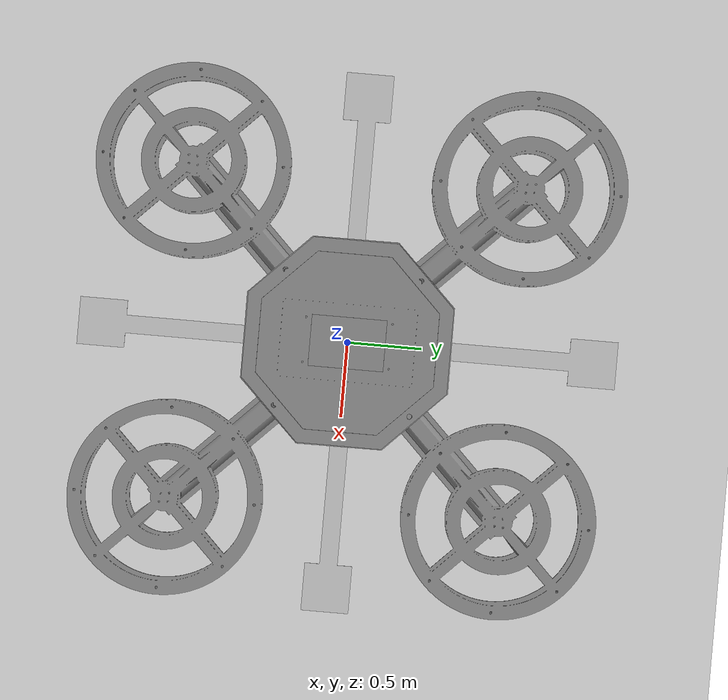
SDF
<?xml version="1.0" ?>
<sdf version="1.8">
    <world name="sensor_world">
        <physics name="1ms" type="ode">
            <max_step_size>0.001</max_step_size>
            <real_time_factor>1.0</real_time_factor>
        </physics>

        <!-- ✅ 기본 Gazebo 시스템 플러그인 -->
        <plugin filename="gz-sim-physics-system" name="gz::sim::systems::Physics"/>
        <plugin filename="gz-sim-user-commands-system" name="gz::sim::systems::UserCommands"/>
        <plugin filename="gz-sim-scene-broadcaster-system" name="gz::sim::systems::SceneBroadcaster"/>
        <plugin filename="gz-sim-imu-system" name="gz::sim::systems::Imu"/>
        <plugin filename="gz-sim-sensors-system" name="gz::sim::systems::Sensors">
            <render_engine>ogre2</render_engine>
        </plugin>
        <plugin filename="gz-sim-contact-system" name="gz::sim::systems::Contact"/>

        <!-- ✅ Ground Plane 추가 (추락 방지) -->
        <model name="ground_plane">
            <static>true</static>
            <link name="link">
                <collision name="collision">
                    <geometry>
                        <plane>
                            <normal>0 0 1</normal>
                        </plane>
                    </geometry>
                </collision>
                <visual name="visual">
                    <geometry>
                        <plane>
                            <normal>0 0 1</normal>
                            <size>1000 1000</size>
                        </plane>
                    </geometry>
                    <material>
                        <ambient>0.8 0.8 0.8 1</ambient>
                        <diffuse>0.8 0.8 0.8 1</diffuse>
                        <specular>0.8 0.8 0.8 1</specular>
                    </material>
                </visual>
            </link>
        </model>

        <!-- ✅ Sun 추가 -->
        <model name="sun">
            <static>true</static>
            <pose>0 0 10 0 0 0</pose>
            <link name="sun_link">
                <light type="directional" name="sun_light">
                    <cast_shadows>true</cast_shadows>
                    <diffuse>1.0 1.0 0.8 1</diffuse>
                    <specular>0.2 0.2 0.2 1</specular>
                    <attenuation>
                        <range>1000</range>
                        <constant>0.9</constant>
                        <linear>0.01</linear>
                        <quadratic>0.001</quadratic>
                    </attenuation>
                    <direction>-0.5 0.1 -0.9</direction>
                </light>
            </link>
        </model>

        <!-- ✅ Vehicle 모델 -->
        <model name='dof_model' canonical_link='chassis'>
            <pose relative_to='world'>0 0 1.0 0 0 0</pose>

            <!-- ✅ 차체 -->
            <link name='chassis'>
                <pose relative_to='__model__'>0 0 0 0 0 0</pose>
                <inertial>
                    <mass>50</mass>
                    <inertia>
                        <ixx>0.729165</ixx>
                        <ixy>0</ixy>
                        <ixz>0</ixz>
                        <iyy>0.729165</iyy>
                        <iyz>0</iyz>
                        <izz>0.625</izz>
                    </inertia>
                </inertial>
                <visual name='visual'>
                    <pose>0 0 -1.0 0 0 0</pose>
                    <geometry>
                        <mesh>
                            <uri>file:///home/kimsh/ros2_ws/src/dof_simulation/sdf/DOF_Model/meshes/zig_model.dae</uri>
                            <scale>0.004 0.004 0.004</scale>
                        </mesh>
                    </geometry>
                </visual>
                <collision name="collision">
                    <geometry>
                        <box>
                            <size>1.0 1.0 3.0</size>
                        </box>
                    </geometry>
                </collision>
            </link>

            <!-- ✅ yaw Wheel (수평) -->
            <link name='yaw_wheel'>
                <pose relative_to="chassis">0 0 1.6 0 0 0</pose>
                <inertial>
                    <mass>5</mass>
                    <inertia>
                        <ixx>0.145833</ixx>
                        <ixy>0</ixy>
                        <ixz>0</ixz>
                        <iyy>0.145833</iyy>
                        <iyz>0</iyz>
                        <izz>0.125</izz>
                    </inertia>
                </inertial>
                <visual name='visual'>
                    <geometry>
                        <cylinder>
                            <radius>0.05</radius>
                            <length>0.05</length>
                        </cylinder>
                    </geometry>
                    <material>
                        <ambient>0.0 1.0 0.0 1</ambient>
                        <diffuse>0.0 1.0 0.0 1</diffuse>
                        <specular>0.0 1.0 0.0 1</specular>
                    </material>
                </visual>
                <collision name='collision'>
                    <geometry>
                        <cylinder>
                            <radius>0.2</radius>
                            <length>0.1</length>
                        </cylinder>
                    </geometry>
                </collision>
            </link>

            <!-- ✅ Pitch Wheel (수직) -->
            <link name='pitch_wheel'>
                <pose relative_to="yaw_wheel">0 0 0.05 1.5707 0 0</pose>
                <inertial>
                    <mass>5</mass>
                    <inertia>
                        <ixx>0.145833</ixx>
                        <ixy>0</ixy>
                        <ixz>0</ixz>
                        <iyy>0.145833</iyy>
                        <iyz>0</iyz>
                        <izz>0.125</izz>
                    </inertia>
                </inertial>
                <visual name='visual'>
                    <geometry>
                        <cylinder>
                            <radius>0.05</radius>
                            <length>0.05</length>
                        </cylinder>
                    </geometry>
                    <material>
                        <ambient>1.0 0.0 0.0 1</ambient>
                        <diffuse>1.0 0.0 0.0 1</diffuse>
                        <specular>1.0 0.0 0.0 1</specular>
                    </material>
                </visual>
                <collision name='collision'>
                    <geometry>
                        <cylinder>
                            <radius>0.05</radius>
                            <length>0.05</length>
                        </cylinder>
                    </geometry>
                </collision>
            </link>

            <link name='gray_box'>
                <pose relative_to="pitch_wheel">0 0.05 0 0 0 0</pose>  <!-- yaw_wheel 위에 배치 -->
                <self_collide>true</self_collide>
                <inertial>
                    <mass>5</mass>
                    <inertia>
                        <ixx>0.145833</ixx>
                        <ixy>0</ixy>
                        <ixz>0</ixz>
                        <iyy>0.145833</iyy>
                        <iyz>0</iyz>
                        <izz>0.125</izz>
                    </inertia>
                </inertial>
                <gravity>1</gravity>
                <visual name='visual'>
                    <pose>0 0 0 -1.57 1.57 0</pose>
                    <geometry>
                        <mesh>
                            <uri>file:///home/kimsh/ros2_ws/src/dof_simulation/sdf/DOF_Model/meshes/basecase.dae</uri>
                            <scale>0.04 0.04 0.04</scale>
                        </mesh>
                    </geometry>
                    <material>
                        <ambient>0.5 0.5 0.5 1</ambient>  <!-- ✅ 회색 설정 -->
                        <diffuse>0.5 0.5 0.5 1</diffuse>
                        <specular>0.5 0.5 0.5 1</specular>
                    </material>
                </visual>
                <collision name='collision'>
                    <geometry>
                        <mesh>
                            <uri>file:///home/kimsh/ros2_ws/src/dof_simulation/sdf/DOF_Model/meshes/basecase.dae</uri>
                            <scale>0.04 0.04 0.04</scale>
                        </mesh>
                    </geometry>
                </collision>
                <sensor name="imu_sensor" type="imu">
                    <always_on>1</always_on>
                    <update_rate>100</update_rate>
                    <visualize>true</visualize>
                    <topic>imu</topic>
                </sensor>
            </link>

            <link name='gray_top'>
                <pose relative_to="gray_box">0 0.35 0 0 0 0</pose>  <!-- yaw_wheel 위에 배치 -->
                <self_collide>true</self_collide>
                <inertial>
                    <mass>5</mass>
                    <inertia>
                        <ixx>0.145833</ixx>
                        <ixy>0</ixy>
                        <ixz>0</ixz>
                        <iyy>0.145833</iyy>
                        <iyz>0</iyz>
                        <izz>0.125</izz>
                    </inertia>
                </inertial>
                <gravity>1</gravity>
                <visual name='visual'>
                    <pose>0 0 0 -1.57 1.57 0</pose>
                    <geometry>
                        <mesh>
                            <uri>file:///home/kimsh/ros2_ws/src/dof_simulation/sdf/DOF_Model/meshes/toplid.dae</uri>
                            <scale>0.04 0.04 0.04</scale>
                        </mesh>
                    </geometry>
                    <material>
                        <ambient>0.5 0.5 0.5 1</ambient>  <!-- ✅ 회색 설정 -->
                        <diffuse>0.5 0.5 0.5 1</diffuse>
                        <specular>0.5 0.5 0.5 1</specular>
                    </material>
                </visual>
                <collision name='collision'>
                    <geometry>
                        <mesh>
                            <uri>file:///home/kimsh/ros2_ws/src/dof_simulation/sdf/DOF_Model/meshes/toplid.dae</uri>
                            <scale>0.04 0.04 0.04</scale>
                        </mesh>
                    </geometry>
                </collision>
            </link>

            <link name='arm_1'>
                <pose relative_to="gray_box">0.3 0.08 -0.3 -1.5708 0.7854 0</pose>
                <self_collide>true</self_collide>
                <inertial>
                    <mass>5</mass>
                    <inertia>
                        <ixx>0.145833</ixx>
                        <ixy>0</ixy>
                        <ixz>0</ixz>
                        <iyy>0.145833</iyy>
                        <iyz>0</iyz>
                        <izz>0.125</izz>
                    </inertia>
                </inertial>
                <gravity>1</gravity>
                <visual name='visual'>
                    <pose>0 0 0 0 0 0</pose>
                    <geometry>
                        <mesh>
                            <uri>file:///home/kimsh/ros2_ws/src/dof_simulation/sdf/DOF_Model/meshes/arm_prop_motro.dae</uri>
                            <scale>0.004 0.004 0.004</scale>
                        </mesh>
                    </geometry>
                    <material>
                        <ambient>0.5 0.5 0.5 1</ambient>  <!-- ✅ 회색 설정 -->
                        <diffuse>0.5 0.5 0.5 1</diffuse>
                        <specular>0.5 0.5 0.5 1</specular>
                    </material>
                </visual>
                <collision name='collision'>
                    <geometry>
                        <mesh>
                            <uri>file:///home/kimsh/ros2_ws/src/dof_simulation/sdf/DOF_Model/meshes/arm_prop_motro.dae</uri>
                            <scale>0.004 0.004 0.004</scale>
                        </mesh>
                    </geometry>
                </collision>
            </link>

            <link name='blade_1'>
                <pose relative_to="arm_1">0.92 0.0 0.26 0 0 0</pose>
                <self_collide>true</self_collide>
                <inertial>
                    <mass>5</mass>
                    <inertia>
                        <ixx>0.145833</ixx>
                        <ixy>0</ixy>
                        <ixz>0</ixz>
                        <iyy>0.145833</iyy>
                        <iyz>0</iyz>
                        <izz>0.125</izz>
                    </inertia>
                </inertial>
                <gravity>1</gravity>
                <visual name='visual'>
                    <pose>0 0 0 0 0 0</pose>
                    <geometry>
                        <mesh>
                            <uri>file:///home/kimsh/ros2_ws/src/dof_simulation/sdf/DOF_Model/meshes/blade.dae</uri>
                            <scale>0.04 0.04 0.04</scale>
                        </mesh>
                    </geometry>
                    <material>
                        <ambient>0.5 0.5 0.5 1</ambient>  <!-- ✅ 회색 설정 -->
                        <diffuse>0.5 0.5 0.5 1</diffuse>
                        <specular>0.5 0.5 0.5 1</specular>
                    </material>
                </visual>
                <collision name='collision'>
                    <geometry>
                        <mesh>
                            <uri>file:///home/kimsh/ros2_ws/src/dof_simulation/sdf/DOF_Model/meshes/blade.dae</uri>
                            <scale>0.04 0.04 0.04</scale>
                        </mesh>
                    </geometry>
                </collision>
            </link>

            <link name='arm_2'>
                <pose relative_to="gray_box">-0.32 0.08 0.32 -1.5708 -2.3562 0</pose>  <!-- yaw_wheel 위에 배치 -->
                <self_collide>true</self_collide>
                <inertial>
                    <mass>5</mass>
                    <inertia>
                        <ixx>0.145833</ixx>
                        <ixy>0</ixy>
                        <ixz>0</ixz>
                        <iyy>0.145833</iyy>
                        <iyz>0</iyz>
                        <izz>0.125</izz>
                    </inertia>
                </inertial>
                <gravity>1</gravity>
                <visual name='visual'>
                    <pose>0 0 0 0 0 0</pose>
                    <geometry>
                        <mesh>
                            <uri>file:///home/kimsh/ros2_ws/src/dof_simulation/sdf/DOF_Model/meshes/arm_prop_motro.dae</uri>
                            <scale>0.004 0.004 0.004</scale>
                        </mesh>
                    </geometry>
                    <material>
                        <ambient>0.5 0.5 0.5 1</ambient>  <!-- ✅ 회색 설정 -->
                        <diffuse>0.5 0.5 0.5 1</diffuse>
                        <specular>0.5 0.5 0.5 1</specular>
                    </material>
                </visual>
                <collision name='collision'>
                    <geometry>
                        <mesh>
                            <uri>file:///home/kimsh/ros2_ws/src/dof_simulation/sdf/DOF_Model/meshes/arm_prop_motro.dae</uri>
                            <scale>0.004 0.004 0.004</scale>
                        </mesh>
                    </geometry>
                </collision>
            </link>

            <link name='blade_2'>
                <pose relative_to="arm_2">0.92 0.0 0.26 0 0 0</pose>
                <self_collide>true</self_collide>
                <inertial>
                    <mass>5</mass>
                    <inertia>
                        <ixx>0.145833</ixx>
                        <ixy>0</ixy>
                        <ixz>0</ixz>
                        <iyy>0.145833</iyy>
                        <iyz>0</iyz>
                        <izz>0.125</izz>
                    </inertia>
                </inertial>
                <gravity>1</gravity>
                <visual name='visual'>
                    <pose>0 0 0 0 0 0</pose>
                    <geometry>
                        <mesh>
                            <uri>file:///home/kimsh/ros2_ws/src/dof_simulation/sdf/DOF_Model/meshes/blade.dae</uri>
                            <scale>0.04 0.04 0.04</scale>
                        </mesh>
                    </geometry>
                    <material>
                        <ambient>0.5 0.5 0.5 1</ambient>  <!-- ✅ 회색 설정 -->
                        <diffuse>0.5 0.5 0.5 1</diffuse>
                        <specular>0.5 0.5 0.5 1</specular>
                    </material>
                </visual>
                <collision name='collision'>
                    <geometry>
                        <mesh>
                            <uri>file:///home/kimsh/ros2_ws/src/dof_simulation/sdf/DOF_Model/meshes/blade.dae</uri>
                            <scale>0.04 0.04 0.04</scale>
                        </mesh>
                    </geometry>
                </collision>
            </link>

            <link name='arm_3'>
                <pose relative_to="gray_box">-0.32 0.08 -0.32 -1.5708 2.3562 0</pose>  <!-- yaw_wheel 위에 배치 -->
                <self_collide>true</self_collide>
                <inertial>
                    <mass>5</mass>
                    <inertia>
                        <ixx>0.145833</ixx>
                        <ixy>0</ixy>
                        <ixz>0</ixz>
                        <iyy>0.145833</iyy>
                        <iyz>0</iyz>
                        <izz>0.125</izz>
                    </inertia>
                </inertial>
                <gravity>1</gravity>
                <visual name='visual'>
                    <pose>0 0 0 0 0 0</pose>
                    <geometry>
                        <mesh>
                            <uri>file:///home/kimsh/ros2_ws/src/dof_simulation/sdf/DOF_Model/meshes/arm_prop_motro.dae</uri>
                            <scale>0.004 0.004 0.004</scale>
                        </mesh>
                    </geometry>
                    <material>
                        <ambient>0.5 0.5 0.5 1</ambient>  <!-- ✅ 회색 설정 -->
                        <diffuse>0.5 0.5 0.5 1</diffuse>
                        <specular>0.5 0.5 0.5 1</specular>
                    </material>
                </visual>
                <collision name='collision'>
                    <geometry>
                        <mesh>
                            <uri>file:///home/kimsh/ros2_ws/src/dof_simulation/sdf/DOF_Model/meshes/arm_prop_motro.dae</uri>
                            <scale>0.004 0.004 0.004</scale>
                        </mesh>
                    </geometry>
                </collision>
            </link>

            <link name='blade_3'>
                <pose relative_to="arm_3">0.92 0.0 0.26 0 0 0</pose>
                <self_collide>true</self_collide>
                <inertial>
                    <mass>5</mass>
                    <inertia>
                        <ixx>0.145833</ixx>
                        <ixy>0</ixy>
                        <ixz>0</ixz>
                        <iyy>0.145833</iyy>
                        <iyz>0</iyz>
                        <izz>0.125</izz>
                    </inertia>
                </inertial>
                <gravity>1</gravity>
                <visual name='visual'>
                    <pose>0 0 0 0 0 0</pose>
                    <geometry>
                        <mesh>
                            <uri>file:///home/kimsh/ros2_ws/src/dof_simulation/sdf/DOF_Model/meshes/blade.dae</uri>
                            <scale>0.04 0.04 0.04</scale>
                        </mesh>
                    </geometry>
                    <material>
                        <ambient>0.5 0.5 0.5 1</ambient>  <!-- ✅ 회색 설정 -->
                        <diffuse>0.5 0.5 0.5 1</diffuse>
                        <specular>0.5 0.5 0.5 1</specular>
                    </material>
                </visual>
                <collision name='collision'>
                    <geometry>
                        <mesh>
                            <uri>file:///home/kimsh/ros2_ws/src/dof_simulation/sdf/DOF_Model/meshes/blade.dae</uri>
                            <scale>0.04 0.04 0.04</scale>
                        </mesh>
                    </geometry>
                </collision>
            </link>

            <link name='arm_4'>
                <pose relative_to="gray_box">0.32 0.08 0.32 -1.5708 -0.7854 0</pose>  <!-- yaw_wheel 위에 배치 -->
                <self_collide>true</self_collide>
                <inertial>
                    <mass>5</mass>
                    <inertia>
                        <ixx>0.145833</ixx>
                        <ixy>0</ixy>
                        <ixz>0</ixz>
                        <iyy>0.145833</iyy>
                        <iyz>0</iyz>
                        <izz>0.125</izz>
                    </inertia>
                </inertial>
                <gravity>1</gravity>
                <visual name='visual'>
                    <pose>0 0 0 0 0 0</pose>
                    <geometry>
                        <mesh>
                            <uri>file:///home/kimsh/ros2_ws/src/dof_simulation/sdf/DOF_Model/meshes/arm_prop_motro.dae</uri>
                            <scale>0.004 0.004 0.004</scale>
                        </mesh>
                    </geometry>
                    <material>
                        <ambient>0.5 0.5 0.5 1</ambient>  <!-- ✅ 회색 설정 -->
                        <diffuse>0.5 0.5 0.5 1</diffuse>
                        <specular>0.5 0.5 0.5 1</specular>
                    </material>
                </visual>
                <collision name='collision'>
                    <geometry>
                        <mesh>
                            <uri>file:///home/kimsh/ros2_ws/src/dof_simulation/sdf/DOF_Model/meshes/arm_prop_motro.dae</uri>
                            <scale>0.004 0.004 0.004</scale>
                        </mesh>
                    </geometry>
                </collision>
            </link>

            <link name='blade_4'>
                <pose relative_to="arm_4">0.92 0.0 0.26 0 0 0</pose>
                <self_collide>true</self_collide>
                <inertial>
                    <mass>5</mass>
                    <inertia>
                        <ixx>0.145833</ixx>
                        <ixy>0</ixy>
                        <ixz>0</ixz>
                        <iyy>0.145833</iyy>
                        <iyz>0</iyz>
                        <izz>0.125</izz>
                    </inertia>
                </inertial>
                <gravity>1</gravity>
                <visual name='visual'>
                    <pose>0 0 0 0 0 0</pose>
                    <geometry>
                        <mesh>
                            <uri>file:///home/kimsh/ros2_ws/src/dof_simulation/sdf/DOF_Model/meshes/blade.dae</uri>
                            <scale>0.04 0.04 0.04</scale>
                        </mesh>
                    </geometry>
                    <material>
                        <ambient>0.5 0.5 0.5 1</ambient>  <!-- ✅ 회색 설정 -->
                        <diffuse>0.5 0.5 0.5 1</diffuse>
                        <specular>0.5 0.5 0.5 1</specular>
                    </material>
                </visual>
                <collision name='collision'>
                    <geometry>
                        <mesh>
                            <uri>file:///home/kimsh/ros2_ws/src/dof_simulation/sdf/DOF_Model/meshes/blade.dae</uri>
                            <scale>0.04 0.04 0.04</scale>
                        </mesh>
                    </geometry>
                </collision>
            </link>

            <joint name='yaw_wheel_joint' type='revolute'>
                <parent>chassis</parent>
                <child>yaw_wheel</child>
                <axis>
                    <xyz>0 0 1</xyz>
                    <limit>
                        <lower>-1e16</lower>
                        <upper>1e16</upper>
                        <effort>5e6</effort>  <!-- ✅ Effort 설정 추가 -->
                    </limit>
                </axis>
            </joint>

            <joint name='pitch_wheel_joint' type='revolute'>
                <parent>yaw_wheel</parent>
                <child>pitch_wheel</child>
                <axis>
                    <xyz>0 0 1</xyz>
                    <limit>
                        <lower>-0.785398</lower>
                        <upper>0.785398</upper>
                        <effort>5e6</effort>  <!-- ✅ Effort 설정 추가 -->
                    </limit>
                </axis>
            </joint>

            <joint name='gray_box_joint' type='revolute'>
                <parent>pitch_wheel</parent>
                <child>gray_box</child>
                <axis>
                    <xyz>1 0 0</xyz>
                    <limit>
                        <lower>-0.785398</lower>
                        <upper>0.785398</upper>
                        <effort>5e6</effort>  <!-- ✅ Effort 설정 추가 -->
                    </limit>
                </axis>
            </joint>

            <joint name='gray_top_joint' type='fixed'>
                <parent>gray_box</parent>
                <child>gray_top</child>
            </joint>

            <joint name='arm_1_joint' type='fixed'>
                <parent>gray_box</parent>
                <child>arm_1</child>
            </joint>

            <joint name='arm_2_joint' type='fixed'>
                <parent>arm_1</parent>
                <child>arm_2</child>
            </joint>

            <joint name='arm_3_joint' type='fixed'>
                <parent>arm_2</parent>
                <child>arm_3</child>
            </joint>

            <joint name='arm_4_joint' type='fixed'>
                <parent>arm_3</parent>
                <child>arm_4</child>
            </joint>

            <joint name='blade_1_joint' type='revolute'>
                <parent>arm_1</parent>
                <child>blade_1</child>
`                <axis>
                    <xyz>0 0 1</xyz>
                    <dynamics>
                        <damping>0.1</damping> <!-- 선택 사항 -->
                    </dynamics>
                    <limit>
                        <lower>-1e16</lower>   <!-- 매우 큰 음수 -->
                        <upper>1e16</upper>    <!-- 매우 큰 양수 -->
                        <effort>5e6</effort>
                    </limit>
                </axis>
            </joint>
            <joint name='blade_2_joint' type='revolute'>
                <parent>arm_2</parent>
                <child>blade_2</child>
                <axis>
                    <xyz>0 0 1</xyz>
                    <dynamics>
                        <damping>0.1</damping> <!-- 선택 사항 -->
                    </dynamics>
                    <limit>
                        <lower>-1e16</lower>   <!-- 매우 큰 음수 -->
                        <upper>1e16</upper>    <!-- 매우 큰 양수 -->
                        <effort>5e6</effort>
                    </limit>
                </axis>
            </joint>
            <joint name='blade_3_joint' type='revolute'>
                <parent>arm_3</parent>
                <child>blade_3</child>
                <axis>
                    <xyz>0 0 1</xyz>
                    <dynamics>
                        <damping>0.1</damping> <!-- 선택 사항 -->
                    </dynamics>
                    <limit>
                        <lower>-1e16</lower>   <!-- 매우 큰 음수 -->
                        <upper>1e16</upper>    <!-- 매우 큰 양수 -->
                        <effort>5e6</effort>
                    </limit>
                </axis>
            </joint>
           <joint name='blade_4_joint' type='revolute'>
                <parent>arm_4</parent>
                <child>blade_4</child>
                <axis>
                    <xyz>0 0 1</xyz>
                    <dynamics>
                        <damping>0.1</damping> <!-- 선택 사항 -->
                    </dynamics>
                    <limit>
                        <lower>-1e16</lower>   <!-- 매우 큰 음수 -->
                        <upper>1e16</upper>    <!-- 매우 큰 양수 -->
                        <effort>5e6</effort>
                    </limit>
                </axis>
            </joint>

            <plugin filename="gz-sim-joint-controller-system" name="gz::sim::systems::JointController">
                <joint_name>pitch_wheel_joint</joint_name>
                <topic>/pitch_wheel/command</topic>
                <velocity_pid>
                    <p>1.0</p>
                    <i>0.0</i>
                    <d>0.0</d>
                    <reset_on_setpoint_change>true</reset_on_setpoint_change>
                </velocity_pid>
            </plugin>

            <plugin filename="gz-sim-joint-controller-system" name="gz::sim::systems::JointController">
                <joint_name>yaw_wheel_joint</joint_name>
                <topic>/yaw_wheel/command</topic>
                <velocity_pid>
                    <p>1.0</p>
                    <i>0.0</i>
                    <d>0.0</d>
                    <reset_on_setpoint_change>true</reset_on_setpoint_change>
                </velocity_pid>
            </plugin>

            <plugin filename="gz-sim-joint-controller-system" name="gz::sim::systems::JointController">
                <joint_name>gray_box_joint</joint_name>
                <topic>/roll_wheel/command</topic>
                <velocity_pid>
                    <p>1.0</p>
                    <i>0.0</i>
                    <d>0.0</d>
                    <reset_on_setpoint_change>true</reset_on_setpoint_change>
                </velocity_pid>
            </plugin>

        <plugin filename="gz-sim-joint-controller-system" name="gz::sim::systems::JointController">
                <joint_name>blade_1_joint</joint_name>
                <topic>/blade_1_cmd/command</topic>
                <velocity_pid>
                    <p>1.0</p>
                    <i>0.0</i>
                    <d>0.0</d>
                    <reset_on_setpoint_change>true</reset_on_setpoint_change>
                </velocity_pid>
            </plugin>

        <plugin filename="gz-sim-joint-controller-system" name="gz::sim::systems::JointController">
                <joint_name>blade_2_joint</joint_name>
                <topic>/blade_2_cmd/command</topic>
                <velocity_pid>
                    <p>1.0</p>
                    <i>0.0</i>
                    <d>0.0</d>
                    <reset_on_setpoint_change>true</reset_on_setpoint_change>
                </velocity_pid>
            </plugin>

        <plugin filename="gz-sim-joint-controller-system" name="gz::sim::systems::JointController">
                <joint_name>blade_3_joint</joint_name>
                <topic>/blade_3_cmd/command</topic>
                <velocity_pid>
                    <p>1.0</p>
                    <i>0.0</i>
                    <d>0.0</d>
                    <reset_on_setpoint_change>true</reset_on_setpoint_change>
                </velocity_pid>
            </plugin>

        <plugin filename="gz-sim-joint-controller-system" name="gz::sim::systems::JointController">
                <joint_name>blade_4_joint</joint_name>
                <topic>/blade_4_cmd/command</topic>
                <velocity_pid>
                    <p>1.0</p>
                    <i>0.0</i>
                    <d>0.0</d>
                    <reset_on_setpoint_change>true</reset_on_setpoint_change>
                </velocity_pid>
            </plugin>
        </model>

        <!-- ✅ 위쪽 화살표 키 (↑) 누르면 피치 증가 -->
        <plugin filename="gz-sim-triggered-publisher-system"
                name="gz::sim::systems::TriggeredPublisher">
            <input type="gz.msgs.Int32" topic="/keyboard/keypress">
                <match field="data">16777235</match>
            </input>
            <output type="gz.msgs.Double" topic="/pitch_wheel/command">
                data: -0.3
            </output>
        </plugin>

        <!-- ✅ 아래쪽 화살표 키 (↓) 누르면 피치 감소 -->
        <plugin filename="gz-sim-triggered-publisher-system"
                 name="gz::sim::systems::TriggeredPublisher">
            <input type="gz.msgs.Int32" topic="/keyboard/keypress">
                <match field="data">16777237</match>
            </input>
            <output type="gz.msgs.Double" topic="/pitch_wheel/command">
                data: 0.3
            </output>
        </plugin>

        <!-- ✅ 왼쪽 화살표 키 (←) 누르면 요 증가 -->
        <plugin filename="gz-sim-triggered-publisher-system"
                name="gz::sim::systems::TriggeredPublisher">
            <input type="gz.msgs.Int32" topic="/keyboard/keypress">
                <match field="data">16777234</match>
            </input>
            <output type="gz.msgs.Double" topic="/yaw_wheel/command">
                data: 0.3
            </output>
        </plugin>

        <!-- ✅ 오른쪽 화살표 키 (→) 누르면 요 감소 -->
        <plugin filename="gz-sim-triggered-publisher-system"
                name="gz::sim::systems::TriggeredPublisher">
            <input type="gz.msgs.Int32" topic="/keyboard/keypress">
                <match field="data">16777236</match>
            </input>
            <output type="gz.msgs.Double" topic="/yaw_wheel/command">
                data: -0.3
            </output>
        </plugin>

        <!-- ✅ 오른쪽 화살표 키 (A) 누르면 요 감소 -->
        <plugin filename="gz-sim-triggered-publisher-system"
                name="gz::sim::systems::TriggeredPublisher">
            <input type="gz.msgs.Int32" topic="/keyboard/keypress">
                <match field="data">65</match>
            </input>
            <output type="gz.msgs.Double" topic="/roll_wheel/command">
                data: -0.3  <!-- ✅ 요 감소 (음의 속도) -->
            </output>
        </plugin>

        <!-- ✅ 오른쪽 화살표 키 (D) 누르면 요 감소 -->
        <plugin filename="gz-sim-triggered-publisher-system"
                name="gz::sim::systems::TriggeredPublisher">
            <input type="gz.msgs.Int32" topic="/keyboard/keypress">
                <match field="data">68</match>
            </input>
            <output type="gz.msgs.Double" topic="/roll_wheel/command">
                data: 0.3
            </output>
        </plugin>
    </world>
</sdf>
